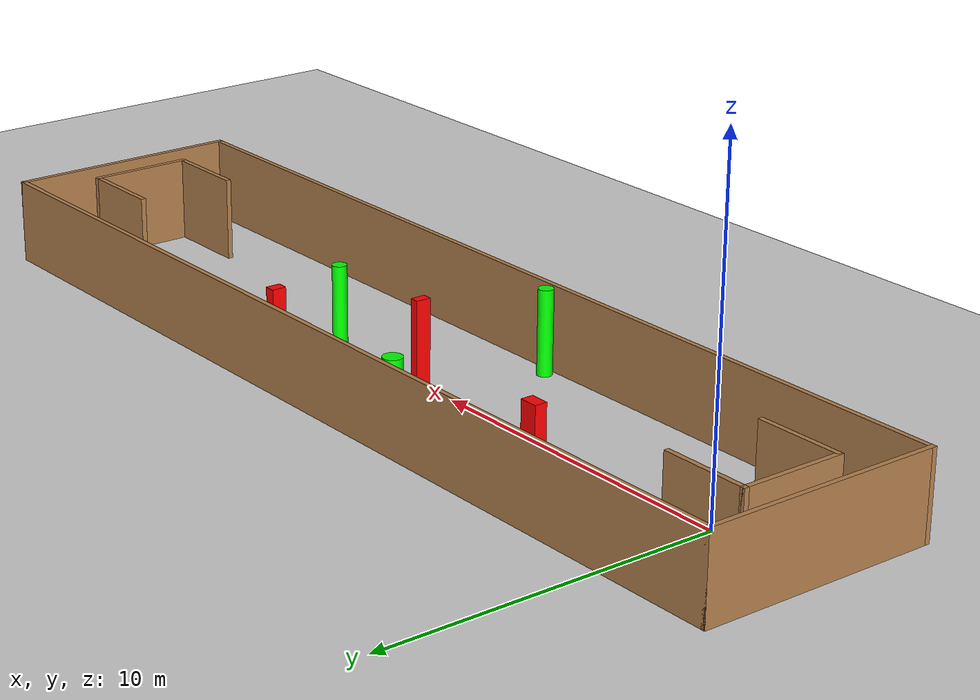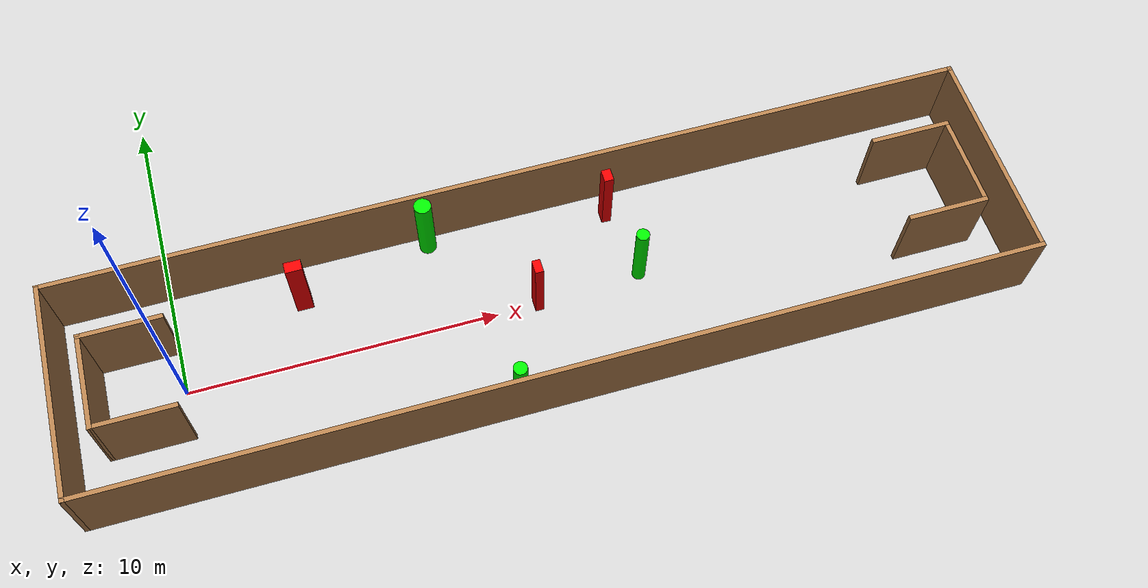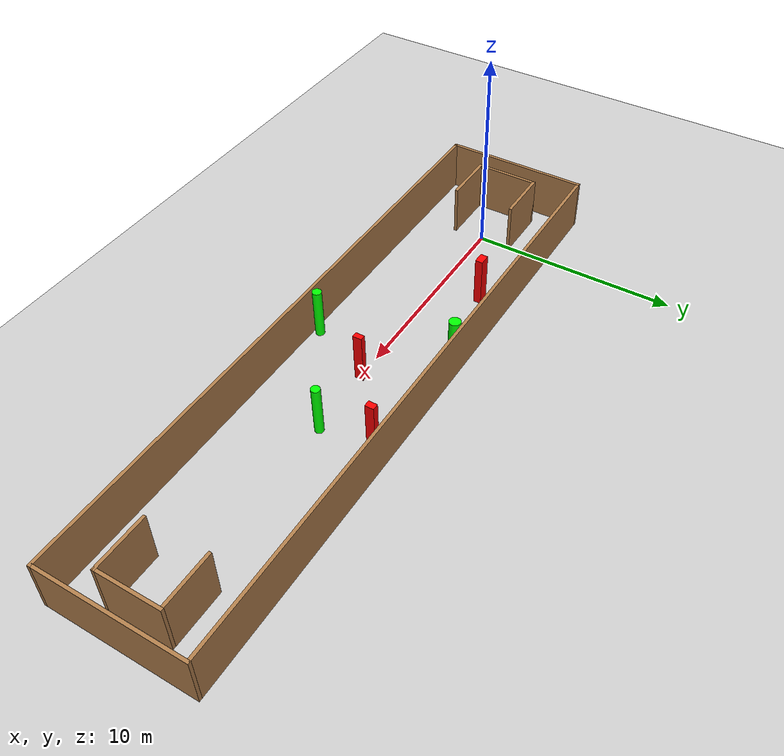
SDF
<sdf version="1.7">
 <world name="default">
  <light name="sun" type="directional">
   <pose>0 0 10 0 -0 0</pose>
   <diffuse>0.8 0.8 0.8 1</diffuse>
   <specular>0.2 0.2 0.2 1</specular>
   <attenuation>
    <range>1000</range>
    <constant>0.9</constant>
    <linear>0.01</linear>
    <quadratic>0.001</quadratic>
   </attenuation>
   <direction>-0.5 0.1 -0.9</direction>
   <spot><inner_angle>0</inner_angle><outer_angle>0</outer_angle><falloff>0</falloff></spot>
  </light>
  <model name="ground_plane">
   <static>1</static>
   <link name="link">
    <collision name="collision">
     <geometry><plane><normal>0 0 1</normal><size>100 100</size></plane></geometry>
     <surface>
      <contact><collide_bitmask>65535</collide_bitmask></contact>
      <friction><ode><mu>100</mu><mu2>50</mu2></ode></friction>
     </surface>
    </collision>
    <visual name="visual">
     <cast_shadows>0</cast_shadows>
     <geometry><plane><normal>0 0 1</normal><size>100 100</size></plane></geometry>
     <material>
      <script><uri>file://media/materials/scripts/gazebo.material</uri><name>Gazebo/Grey</name></script>
     </material>
    </visual>
   </link>
  </model>
  <gravity>0 0 -9.8</gravity>
  <magnetic_field>6e-06 2.3e-05 -4.2e-05</magnetic_field>
  <atmosphere type="adiabatic"/>
  <physics type="ode">
   <max_step_size>0.001</max_step_size>
   <real_time_factor>1</real_time_factor>
   <real_time_update_rate>1000</real_time_update_rate>
  </physics>
  <scene><ambient>0.4 0.4 0.4 1</ambient><background>0.7 0.7 0.7 1</background><shadows>1</shadows></scene>
  <spherical_coordinates>
   <surface_model>EARTH_WGS84</surface_model>
   <latitude_deg>0</latitude_deg>
   <longitude_deg>0</longitude_deg>
   <elevation>0</elevation>
   <heading_deg>0</heading_deg>
  </spherical_coordinates>
  <model name="my_base_walls">
   <link name="Wall_0">
    <collision name="Wall_0_Collision">
     <geometry><box><size>7.15 0.15 2.5</size></box></geometry>
     <pose>0 0 1.25 0 -0 0</pose>
    </collision>
    <visual name="Wall_0_Visual">
     <pose>0 0 1.25 0 -0 0</pose>
     <geometry><box><size>7.15 0.15 2.5</size></box></geometry>
     <material>
      <script><uri>file://media/materials/scripts/gazebo.material</uri><name>Gazebo/Wood</name></script>
      <ambient>1 1 1 1</ambient>
     </material>
     <meta><layer>0</layer></meta>
    </visual>
    <pose>-15 0 0 0 -0 1.5708</pose>
   </link>
   <link name="Wall_10">
    <collision name="Wall_10_Collision">
     <geometry><box><size>2.65 0.15 2.5</size></box></geometry>
     <pose>0 0 1.25 0 -0 0</pose>
    </collision>
    <visual name="Wall_10_Visual">
     <pose>0 0 1.25 0 -0 0</pose>
     <geometry><box><size>2.65 0.15 2.5</size></box></geometry>
     <material>
      <script><uri>file://media/materials/scripts/gazebo.material</uri><name>Gazebo/Wood</name></script>
      <ambient>1 1 1 1</ambient>
     </material>
     <meta><layer>0</layer></meta>
    </visual>
    <pose>-12.75 -1.5 0 0 -0 0</pose>
   </link>
   <link name="Wall_12">
    <collision name="Wall_12_Collision">
     <geometry><box><size>2.65 0.15 2.5</size></box></geometry>
     <pose>0 0 1.25 0 -0 0</pose>
    </collision>
    <visual name="Wall_12_Visual">
     <pose>0 0 1.25 0 -0 0</pose>
     <geometry><box><size>2.65 0.15 2.5</size></box></geometry>
     <material>
      <script><uri>file://media/materials/scripts/gazebo.material</uri><name>Gazebo/Wood</name></script>
      <ambient>1 1 1 1</ambient>
     </material>
     <meta><layer>0</layer></meta>
    </visual>
    <pose>-12.75 1.5 0 0 -0 0</pose>
   </link>
   <link name="Wall_14">
    <collision name="Wall_14_Collision">
     <geometry><box><size>3.15 0.15 2.5</size></box></geometry>
     <pose>0 0 1.25 0 -0 0</pose>
    </collision>
    <visual name="Wall_14_Visual">
     <pose>0 0 1.25 0 -0 0</pose>
     <geometry><box><size>3.15 0.15 2.5</size></box></geometry>
     <material>
      <script><uri>file://media/materials/scripts/gazebo.material</uri><name>Gazebo/Wood</name></script>
      <ambient>1 1 1 1</ambient>
     </material>
     <meta><layer>0</layer></meta>
    </visual>
    <pose>14 0 0 0 -0 -1.5708</pose>
   </link>
   <link name="Wall_15">
    <collision name="Wall_15_Collision">
     <geometry><box><size>2.65 0.15 2.5</size></box></geometry>
     <pose>0 0 1.25 0 -0 0</pose>
    </collision>
    <visual name="Wall_15_Visual">
     <pose>0 0 1.25 0 -0 0</pose>
     <geometry><box><size>2.65 0.15 2.5</size></box></geometry>
     <material>
      <script><uri>file://media/materials/scripts/gazebo.material</uri><name>Gazebo/Wood</name></script>
      <ambient>1 1 1 1</ambient>
     </material>
     <meta><layer>0</layer></meta>
    </visual>
    <pose>12.75 -1.5 0 0 -0 3.14159</pose>
   </link>
   <link name="Wall_17">
    <collision name="Wall_17_Collision">
     <geometry><box><size>2.65 0.15 2.5</size></box></geometry>
     <pose>0 0 1.25 0 -0 0</pose>
    </collision>
    <visual name="Wall_17_Visual">
     <pose>0 0 1.25 0 -0 0</pose>
     <geometry><box><size>2.65 0.15 2.5</size></box></geometry>
     <material>
      <script><uri>file://media/materials/scripts/gazebo.material</uri><name>Gazebo/Wood</name></script>
      <ambient>1 1 1 1</ambient>
     </material>
     <meta><layer>0</layer></meta>
    </visual>
    <pose>12.75 1.5 0 0 -0 3.14159</pose>
   </link>
   <link name="Wall_2">
    <collision name="Wall_2_Collision">
     <geometry><box><size>30.15 0.15 2.5</size></box></geometry>
     <pose>0 0 1.25 0 -0 0</pose>
    </collision>
    <visual name="Wall_2_Visual">
     <pose>0 0 1.25 0 -0 0</pose>
     <geometry><box><size>30.15 0.15 2.5</size></box></geometry>
     <material>
      <script><uri>file://media/materials/scripts/gazebo.material</uri><name>Gazebo/Wood</name></script>
      <ambient>1 1 1 1</ambient>
     </material>
     <meta><layer>0</layer></meta>
    </visual>
    <pose>-0 -3.5 0 0 -0 0</pose>
   </link>
   <link name="Wall_4">
    <collision name="Wall_4_Collision">
     <geometry><box><size>30.15 0.15 2.5</size></box></geometry>
     <pose>0 0 1.25 0 -0 0</pose>
    </collision>
    <visual name="Wall_4_Visual">
     <pose>0 0 1.25 0 -0 0</pose>
     <geometry><box><size>30.15 0.15 2.5</size></box></geometry>
     <material>
      <script><uri>file://media/materials/scripts/gazebo.material</uri><name>Gazebo/Wood</name></script>
      <ambient>1 1 1 1</ambient>
     </material>
     <meta><layer>0</layer></meta>
    </visual>
    <pose>-0 3.5 0 0 -0 0</pose>
   </link>
   <link name="Wall_6">
    <collision name="Wall_6_Collision">
     <geometry><box><size>7.15 0.15 2.5</size></box></geometry>
     <pose>0 0 1.25 0 -0 0</pose>
    </collision>
    <visual name="Wall_6_Visual">
     <pose>0 0 1.25 0 -0 0</pose>
     <geometry><box><size>7.15 0.15 2.5</size></box></geometry>
     <material>
      <script><uri>file://media/materials/scripts/gazebo.material</uri><name>Gazebo/Wood</name></script>
      <ambient>1 1 1 1</ambient>
     </material>
     <meta><layer>0</layer></meta>
    </visual>
    <pose>15 0 0 0 -0 -1.5708</pose>
   </link>
   <link name="Wall_9">
    <collision name="Wall_9_Collision">
     <geometry><box><size>3.15 0.15 2.5</size></box></geometry>
     <pose>0 0 1.25 0 -0 0</pose>
    </collision>
    <visual name="Wall_9_Visual">
     <pose>0 0 1.25 0 -0 0</pose>
     <geometry><box><size>3.15 0.15 2.5</size></box></geometry>
     <material>
      <script><uri>file://media/materials/scripts/gazebo.material</uri><name>Gazebo/Wood</name></script>
      <ambient>1 1 1 1</ambient>
     </material>
     <meta><layer>0</layer></meta>
    </visual>
    <pose>-14 0 0 0 -0 -1.5708</pose>
   </link>
   <static>1</static>
   <pose>11.5 0 0 0 -0 0</pose>
  </model>
  <model name="cylinder1">
   <static>1</static>
   <link name="link">
    <inertial>
     <mass>1</mass>
     <inertia><ixx>0.5</ixx><ixy>0</ixy><ixz>0</ixz><iyy>0.5</iyy><iyz>0</iyz><izz>1</izz></inertia>
    </inertial>
    <collision name="collision">
     <geometry><cylinder><radius>0.27787506481546054</radius><length>2.5</length></cylinder></geometry>
    </collision>
    <visual name="visual">
     <geometry><cylinder><radius>0.27787506481546054</radius><length>2.5</length></cylinder></geometry>
     <material>
      <ambient>0 1 0 1</ambient>
      <diffuse>0 1 0 1</diffuse>
      <specular>0.1 0.1 0.1 1</specular>
      <emissive>0 0 0 0</emissive>
     </material>
    </visual>
   </link>
   <pose>8.430850005171761 3.097421738438009 1.25 0 0 0</pose>
  </model>
  <model name="cylinder2">
   <static>1</static>
   <link name="link">
    <inertial>
     <mass>1</mass>
     <inertia><ixx>0.5</ixx><ixy>0</ixy><ixz>0</ixz><iyy>0.5</iyy><iyz>0</iyz><izz>1</izz></inertia>
    </inertial>
    <collision name="collision">
     <geometry><cylinder><radius>0.22005196606231545</radius><length>2.5</length></cylinder></geometry>
    </collision>
    <visual name="visual">
     <geometry><cylinder><radius>0.22005196606231545</radius><length>2.5</length></cylinder></geometry>
     <material>
      <ambient>0 1 0 1</ambient>
      <diffuse>0 1 0 1</diffuse>
      <specular>0.1 0.1 0.1 1</specular>
      <emissive>0 0 0 0</emissive>
     </material>
    </visual>
   </link>
   <pose>9.892932676552606 -3.123442811450813 1.25 0 0 0</pose>
  </model>
  <model name="cylinder3">
   <static>1</static>
   <link name="link">
    <inertial>
     <mass>1</mass>
     <inertia><ixx>0.5</ixx><ixy>0</ixy><ixz>0</ixz><iyy>0.5</iyy><iyz>0</iyz><izz>1</izz></inertia>
    </inertial>
    <collision name="collision">
     <geometry><cylinder><radius>0.2112859409685934</radius><length>2.5</length></cylinder></geometry>
    </collision>
    <visual name="visual">
     <geometry><cylinder><radius>0.2112859409685934</radius><length>2.5</length></cylinder></geometry>
     <material>
      <ambient>0 1 0 1</ambient>
      <diffuse>0 1 0 1</diffuse>
      <specular>0.1 0.1 0.1 1</specular>
      <emissive>0 0 0 0</emissive>
     </material>
    </visual>
   </link>
   <pose>14.755280888276861 0.20853014229734246 1.25 0 0 0</pose>
  </model>
  <model name="box1">
   <static>1</static>
   <link name="link">
    <inertial>
     <mass>1</mass>
     <inertia><ixx>0.083</ixx><ixy>0</ixy><ixz>0</ixz><iyy>0.083</iyy><iyz>0</iyz><izz>0.083</izz></inertia>
    </inertial>
    <collision name="collision">
     <geometry><box><size>0.2664406428269433 0.4409494920457541 2.5</size></box></geometry>
    </collision>
    <visual name="visual">
     <geometry><box><size>0.2664406428269433 0.4409494920457541 2.5</size></box></geometry>
     <material>
      <ambient>1 0 0 1</ambient>
      <diffuse>1 0 0 1</diffuse>
      <specular>0.1 0.1 0.1 1</specular>
      <emissive>0 0 0 0</emissive>
     </material>
    </visual>
    <sensor name="my_contact" type="contact">
     <contact><collision>box_collision</collision><topic>__default_topic__</topic></contact>
    </sensor>
   </link>
   <pose>11.310234096261018 0.027318565341235335 1.25 0 0 0</pose>
  </model>
  <model name="box2">
   <static>1</static>
   <link name="link">
    <inertial>
     <mass>1</mass>
     <inertia><ixx>0.083</ixx><ixy>0</ixy><ixz>0</ixz><iyy>0.083</iyy><iyz>0</iyz><izz>0.083</izz></inertia>
    </inertial>
    <collision name="collision">
     <geometry><box><size>0.5382642070941698 0.3618606082191784 2.5</size></box></geometry>
    </collision>
    <visual name="visual">
     <geometry><box><size>0.5382642070941698 0.3618606082191784 2.5</size></box></geometry>
     <material>
      <ambient>1 0 0 1</ambient>
      <diffuse>1 0 0 1</diffuse>
      <specular>0.1 0.1 0.1 1</specular>
      <emissive>0 0 0 0</emissive>
     </material>
    </visual>
    <sensor name="my_contact" type="contact">
     <contact><collision>box_collision</collision><topic>__default_topic__</topic></contact>
    </sensor>
   </link>
   <pose>4.114778773023055 2.084487359893651 1.25 0 0 0</pose>
  </model>
  <model name="box3">
   <static>1</static>
   <link name="link">
    <inertial>
     <mass>1</mass>
     <inertia><ixx>0.083</ixx><ixy>0</ixy><ixz>0</ixz><iyy>0.083</iyy><iyz>0</iyz><izz>0.083</izz></inertia>
    </inertial>
    <collision name="collision">
     <geometry><box><size>0.30711180700808743 0.42373488484824595 2.5</size></box></geometry>
    </collision>
    <visual name="visual">
     <geometry><box><size>0.30711180700808743 0.42373488484824595 2.5</size></box></geometry>
     <material>
      <ambient>1 0 0 1</ambient>
      <diffuse>1 0 0 1</diffuse>
      <specular>0.1 0.1 0.1 1</specular>
      <emissive>0 0 0 0</emissive>
     </material>
    </visual>
    <sensor name="my_contact" type="contact">
     <contact><collision>box_collision</collision><topic>__default_topic__</topic></contact>
    </sensor>
   </link>
   <pose>14.339590630956646 2.6008922501615146 1.25 0 0 0</pose>
  </model>
 </world>
</sdf>
